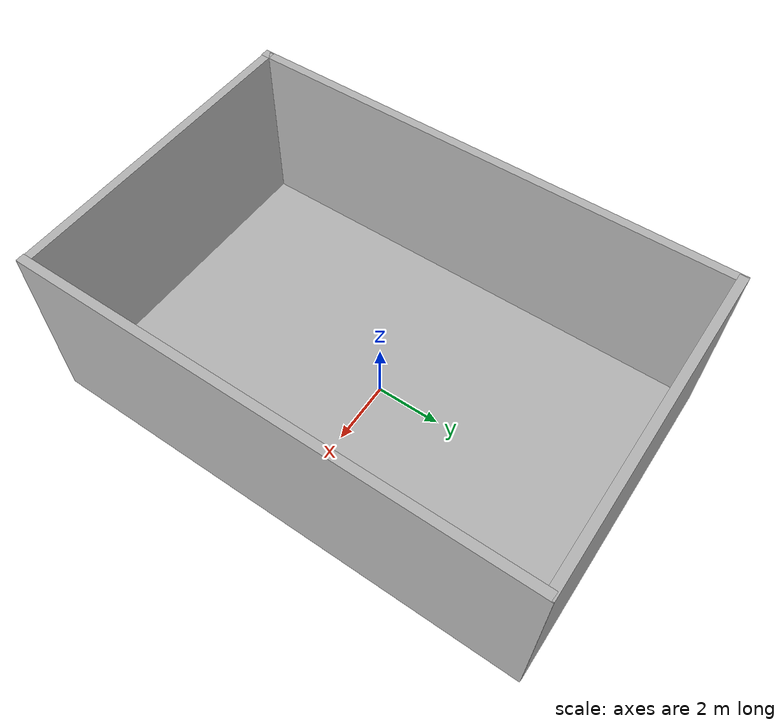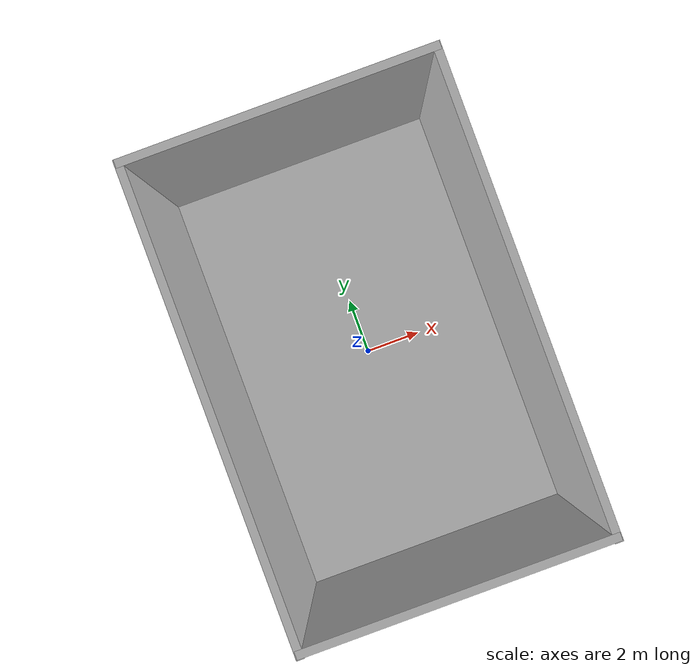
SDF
<?xml version="1.0" ?>
<sdf version="1.7">
  <world name="rover_world">

    <!-- ── Physics ─────────────────────────────────────────────────── -->
    <physics name="default_physics" default="true" type="ode">
      <max_step_size>0.001</max_step_size>
      <real_time_factor>1.0</real_time_factor>
      <real_time_update_rate>1000</real_time_update_rate>
      <gravity>0 0 -9.81</gravity>
    </physics>

    <!-- ── Scene ───────────────────────────────────────────────────── -->
    <scene>
      <ambient>0.4 0.4 0.4 1</ambient>
      <background>0.53 0.73 0.87 1</background>
      <shadows>true</shadows>
    </scene>

    <!-- ── Sun ─────────────────────────────────────────────────────── -->
    <light name="sun" type="directional">
      <cast_shadows>true</cast_shadows>
      <direction>-0.292 -0.771 -0.567</direction>
      <diffuse>0.9 0.9 0.85 1</diffuse>
      <specular>0.3 0.3 0.3 1</specular>
      <attenuation>
        <range>1000</range>
        <constant>0.9</constant>
        <linear>0.01</linear>
        <quadratic>0.001</quadratic>
      </attenuation>
    </light>

    <!-- ── GUI camera ──────────────────────────────────────────────── -->
    <gui fullscreen="0">
      <camera name="user_camera">
        <pose>7.36 -6.93 4.96 0 0.45 2.36</pose>
        <view_controller>orbit</view_controller>
        <projection_type>perspective</projection_type>
      </camera>
    </gui>

    <model name="ground">
      <static>true</static>
      <pose>0 0 0.181 0 0 0</pose>
      <link name="link">
        <collision name="collision">
          <geometry>
            <box><size>10.0 15.0 0.362</size></box>
          </geometry>
          <surface>
            <friction>
              <ode><mu>0.8</mu><mu2>0.8</mu2></ode>
            </friction>
            <contact>
              <ode><kp>1e6</kp><kd>100</kd></ode>
            </contact>
          </surface>
        </collision>
        <visual name="visual">
          <geometry>
            <box><size>10.0 15.0 0.362</size></box>
          </geometry>
          <material>
            <script>
                <uri>file:///home/mitul/code/trippy_ws/src/ros2_sawppy/rover_gazebo/models/indoor_room/materials/scripts/floor.material</uri>
                <name>RoverWorld/Floor</name>
            </script>
          </material>
        </visual>
      </link>
    </model>

    <model name="barrier_south">
      <static>true</static>
      <pose>0.006 -7.543 2.861 0 0 0</pose>
      <link name="link">
        <collision name="collision">
          <geometry>
            <box><size>10.017 0.265 5.643</size></box>
          </geometry>
        </collision>
        <visual name="visual">
          <geometry>
            <box><size>10.017 0.265 5.643</size></box>
          </geometry>
          <material>
            <script>
              <uri>file:///home/mitul/code/trippy_ws/src/ros2_sawppy/rover_gazebo/models/indoor_room/materials/scripts/wall.material</uri>
              <name>RoverWorld/Wall</name>
            </script>
          </material>
        </visual>
      </link>
    </model>

    <model name="barrier_north_b">
      <static>true</static>
      <pose>0.006 7.571 2.861 0 0 0</pose>
      <link name="link">
        <collision name="collision">
          <geometry>
            <box><size>10.017 0.265 5.643</size></box>
          </geometry>
        </collision>
        <visual name="visual">
          <geometry>
            <box><size>10.017 0.265 5.643</size></box>
          </geometry>
          <material>
            <script>
              <uri>file:///home/mitul/code/trippy_ws/src/ros2_sawppy/rover_gazebo/models/indoor_room/materials/scripts/wall.material</uri>
              <name>RoverWorld/Wall</name>
            </script>
          </material>
        </visual>
      </link>
    </model>

    <model name="barrier_east">
      <static>true</static>
      <pose>4.900 0.000 2.861 0 0 -1.5708</pose>
      <link name="link">
        <collision name="collision">
          <geometry>
            <box><size>15.398 0.265 5.643</size></box>
          </geometry>
        </collision>
        <visual name="visual">
          <geometry>
            <box><size>15.398 0.265 5.643</size></box>
          </geometry>
          <material>
            <script>
              <uri>file:///home/mitul/code/trippy_ws/src/ros2_sawppy/rover_gazebo/models/indoor_room/materials/scripts/wall.material</uri>
              <name>RoverWorld/Wall</name>
            </script>
          </material>
        </visual>
      </link>
    </model>

    <model name="barrier_west">
      <static>true</static>
      <pose>-4.900 0.000 2.861 0 0 1.5708</pose>
      <link name="link">
        <collision name="collision">
          <geometry>
            <box><size>15.398 0.265 5.643</size></box>
          </geometry>
        </collision>
        <visual name="visual">
          <geometry>
            <box><size>15.398 0.265 5.643</size></box>
          </geometry>
          <material>
            <script>
              <uri>file:///home/mitul/code/trippy_ws/src/ros2_sawppy/rover_gazebo/models/indoor_room/materials/scripts/wall.material</uri>
              <name>RoverWorld/Wall</name>
            </script>
          </material>
        </visual>
      </link>
    </model>

  </world>
</sdf>
